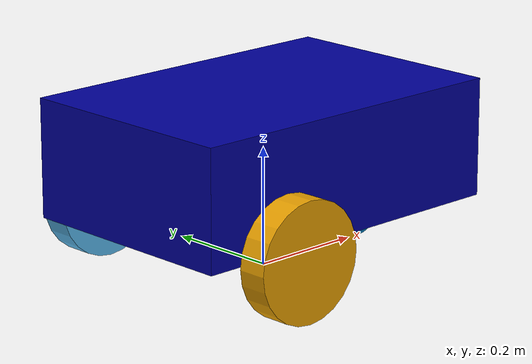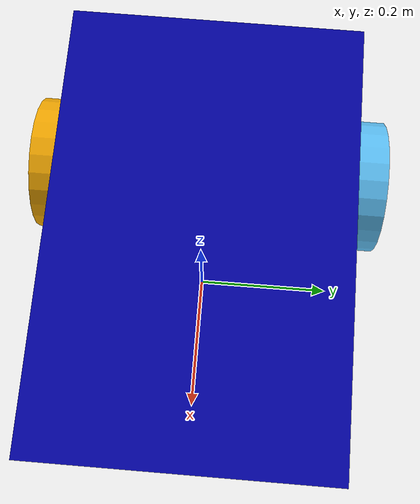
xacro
<?xml version="1.0"?>
<robot name="my_robot" xmlns:xacro="http://www.ros.org/wiki/xacro" >

    <xacro:include filename="materials.xacro" />
    <xacro:include filename="joints.xacro" />

    <xacro:include filename="links.xacro" />

    <xacro:property name="base_length" value="0.6" />

    <gazebo reference="castor_wheel_link">
        <mu1>0.1</mu1>
        <mu2>0.1</mu2>
    </gazebo>

    <gazebo>
        <plugin name="gz::sim::systems::DiffDrive" filename="gz-sim-diff-drive-system">
            <left_joint>left_wheel_joint</left_joint>
            <right_joint>right_wheel_joint</right_joint>
            <wheel_separation>0.34</wheel_separation>
            <wheel_radius>0.1</wheel_radius>
            <topic>/cmd_vel</topic>
            <odometry_topic>/odom</odometry_topic>
            <odometry_frame>odom</odometry_frame>
            <robot_base_frame>base_link</robot_base_frame>
            <update_rate>100.0</update_rate>
            <gaussian_noise>0.0</gaussian_noise>
            <frame_id>odom</frame_id>
            <child_frame_id>base_footprint</child_frame_id>
        </plugin>
    </gazebo>

    <gazebo>
        <plugin name = "gz::sim::systems::JointStatePublisher" filename="gz-sim-joint-state-publisher-system">
            <joint_name>base_left_wheel_joint</joint_name>
            <joint_name>base_right_wheel_joint</joint_name>
        </plugin>
    </gazebo>

</robot>

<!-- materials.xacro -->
<robot xmlns:xacro="http://www.ros.org/wiki/xacro" >

   <material name="blue">
        <color rgba="0 0 0.6 1" />
    </material>

    <material name="red">
        <color rgba="0.6 0 0 1" />
    </material>

</robot>

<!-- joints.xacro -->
<robot xmlns:xacro="http://www.ros.org/wiki/xacro" >

    <xacro:property name="base_length" value="0.6" />

    <xacro:macro name="wheel_link" params="name">
        <link name="${name}_wheel_link">
            <visual>
                <geometry>
                    <cylinder radius="${base_length / 6.0}" length="${base_length / 12.0}"/>
                </geometry>
                <origin xyz="0 0 0" rpy="${pi / 2.0} 0 0" />
            </visual>
            <collision>
                <geometry>
                    <cylinder radius="${base_length / 6.0}" length="${base_length / 12.0}"/>
                </geometry>
                <origin xyz="0 0 0" rpy="${pi / 2.0} 0 0" />
            </collision>
            <inertial>
                <mass value="0.5"/>
                <inertia ixx="0.001" iyy="0.001" izz="0.001" ixy="0.0" ixz="0.0" iyz="0.0"/>
            </inertial>
        </link>
    </xacro:macro>

    <xacro:wheel_link name="left"/>
    <xacro:wheel_link name="right"/>

    <link name="base_footprint"/>

    <link name="base_link">
        <visual>
            <geometry>
                <box size="${base_length} ${base_length / 1.5} ${base_length / 3.0}"/>
            </geometry>
            <origin xyz="0 0 ${base_length / 6.0}" rpy="0 0 0"/>
            <material name="blue" />
        </visual>
        <collision>
            <geometry>
                <box size="${base_length} ${base_length / 1.5} ${base_length / 3.0}"/>
            </geometry>
            <origin xyz="0 0 ${base_length / 6.0}" rpy="0 0 0"/>
        </collision>
        <inertial>
            <mass value="5.0"/>
            <inertia ixx="0.1" iyy="0.1" izz="0.1" ixy="0.0" ixz="0.0" iyz="0.0"/>
        </inertial>
    </link>

    <link name="castor_wheel_link">
        <visual>
            <geometry>
                <sphere radius="${base_length / 12.0}" />
            </geometry>
            <origin xyz="0 0 0" rpy="0 0 0" />
        </visual>
        <collision>
            <geometry>
                <sphere radius="${base_length / 12.0}" />
            </geometry>
            <origin xyz="0 0 0" rpy="0 0 0" />
        </collision>
        <inertial>
            <mass value="0.2"/>
            <inertia ixx="0.0001" iyy="0.0001" izz="0.0001" ixy="0.0" ixz="0.0" iyz="0.0"/>
        </inertial>
    </link>

</robot>

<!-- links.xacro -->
<robot xmlns:xacro="http://www.ros.org/wiki/xacro" >

    <xacro:property name="base_length" value="0.6" />

    <joint name="base_right_wheel_joint" type="continuous">
        <parent link="base_link" />
        <child link="right_wheel_link" />
        <origin xyz="${-base_length / 4.0} ${base_length / 2.55} 0" rpy="0 0 0" />
        <axis xyz="0 1 0" />
    </joint>

    <joint name="base_left_wheel_link" type="continuous">
        <parent link="base_link" />
        <child link="left_wheel_link" />
        <origin xyz="${-base_length / 4.0} ${-base_length / 2.55} 0" rpy="0 0 0" />
        <axis xyz="0 1 0" />
    </joint>

    <joint name="base_castor_wheel_link" type="fixed">
        <parent link="base_link" />
        <child link="castor_wheel_link" />
        <origin xyz="${base_length / 3.0} 0 ${-base_length / 13.3}" rpy="0 0 0" />
    </joint>

    <joint name="base_joint" type="fixed">
        <parent link="base_footprint" />
        <child link="base_link" />
        <origin xyz="0 0 0.1" rpy="0 0 0" />
    </joint>

</robot>
